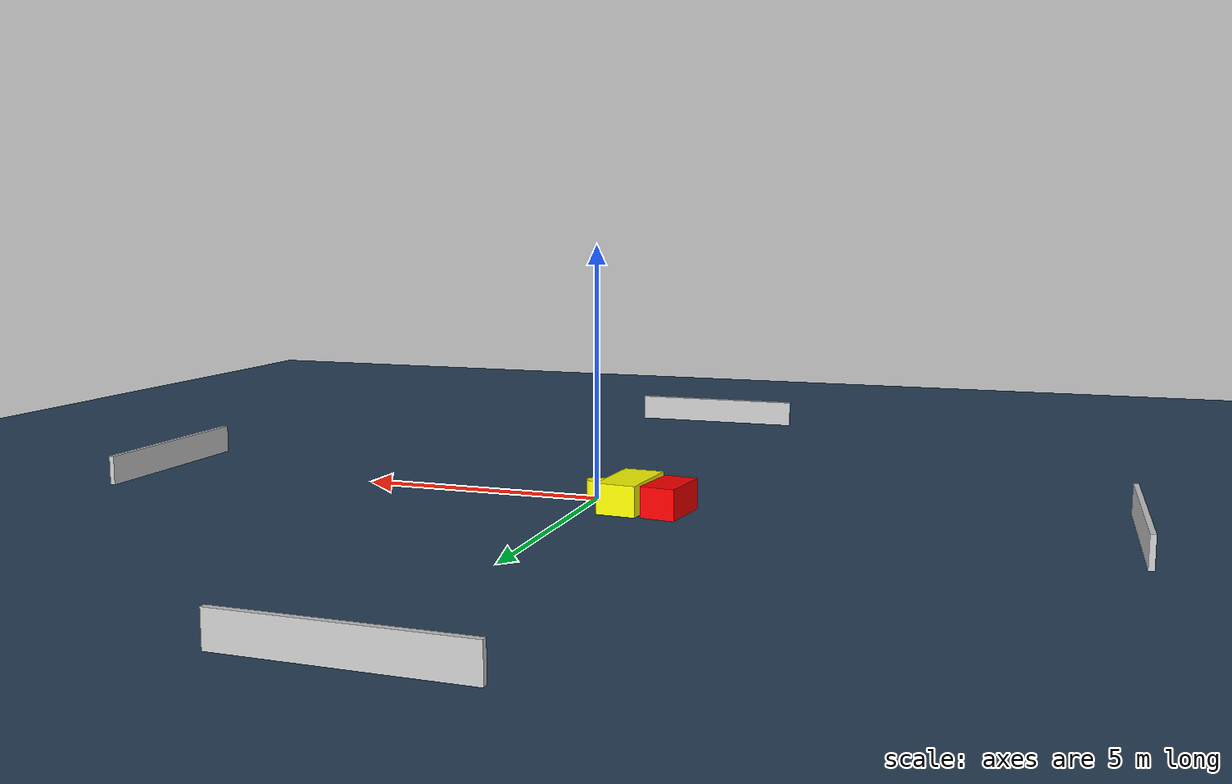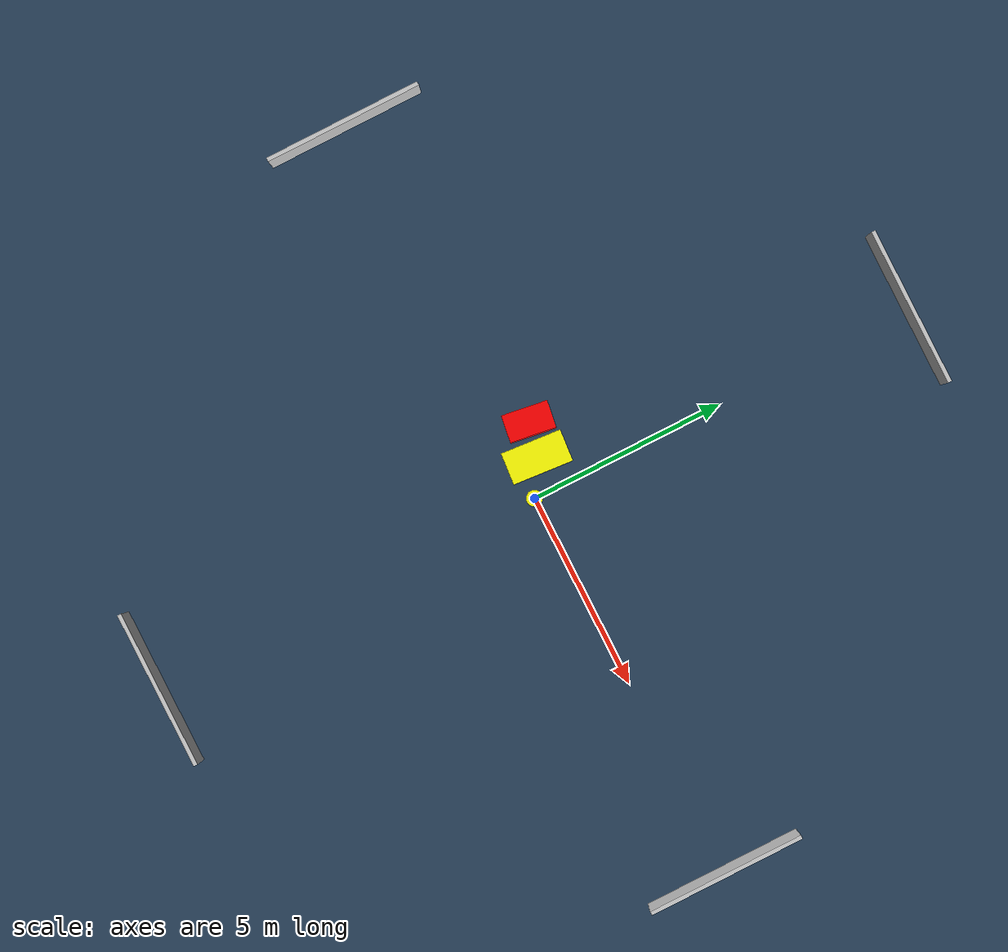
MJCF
<?xml version="1.0" ?>
<mujoco model="generated_environment">
  <option timestep="0.01" integrator="RK4" cone="elliptic"/>
  <default>
    <geom density="1"/>
  </default>
  <asset>
    <texture builtin="gradient" height="3072" name="skybox" rgb1="0.3 0.5 0.7" rgb2="0 0 0" type="skybox" width="512"/>
    <texture builtin="checker" height="300" name="groundplane" rgb1="0.2 0.3 0.4" rgb2="0.1 0.2 0.3" type="2d" width="300"/>
    <material name="groundplane" reflectance="0.2" texrepeat="5 5" texture="groundplane"/>
  </asset>
  <worldbody>
    <light dir="0 0 -1" directional="true" pos="0 0 1.5"/>
    <geom condim="3" friction="0.5 0.005 0.001" material="groundplane" name="floor" pos="0 0 0" size="0 0 0.05" type="plane"/>
    <body name="walls">
      <geom name="wall_1" condim="4" pos="-10.0 0.0 0.3" rgba="0.800000011920929 0.800000011920929 0.800000011920929 1.0" size="0.05 2.0 0.3" type="box"/>
      <geom name="wall_2" condim="4" pos="10.0 0.0 0.3" rgba="0.800000011920929 0.800000011920929 0.800000011920929 1.0" size="0.05 2.0 0.3" type="box"/>
      <geom name="wall_3" condim="4" pos="0.0 -10.0 0.3" rgba="0.800000011920929 0.800000011920929 0.800000011920929 1.0" size="2.0 0.05 0.3" type="box"/>
      <geom name="wall_4" condim="4" pos="0.0 10.0 0.3" rgba="0.800000011920929 0.800000011920929 0.800000011920929 1.0" size="2.0 0.05 0.3" type="box"/>
    </body>
    <body name="robot">
      <joint name="joint_x" type="slide" pos="0 0 0" axis="1 0 0"/>
      <joint name="joint_y" type="slide" pos="0 0 0" axis="0 1 0"/>
      <geom name="robot" type="cylinder" pos="0.0 0.0 0.2" size="0.2 0.2 0.0" mass="5.0" friction="1.0 0.005 0.0001" condim="4" rgba="1.0 1.0 0.0 1.0"/>
    </body>
    <body name="obstacle_1_movable">
      <geom name="obstacle_1_movable" condim="4" pos="-0.8441916225158866 0.4931512049896503 0.3" euler="0 0 85.2754548774638" friction="0.0 0.005 0.001" rgba="1.0 1.0 0.0 1.0" size="0.7562665372445854 0.39614456382340946 0.3" type="box" mass="0.1"/>
      <joint type="free"/>
    </body>
    <body name="obstacle_2_static">
      <geom name="obstacle_2_static" condim="4" pos="-1.684270956990439 0.7023702088600877 0.3" euler="0 0 351.8417917999457" friction="0.0 0.005 0.001" rgba="1.0 0.0 0.0 1.0" size="0.3368207161958974 0.5752784787790404 0.3" type="box"/>
    </body>
  </worldbody>
  <actuator>
    <motor name="actuator_x" joint="joint_x" gear="1" ctrlrange="-1 1"/>
    <motor name="actuator_y" joint="joint_y" gear="1" ctrlrange="-1 1"/>
  </actuator>
</mujoco>
